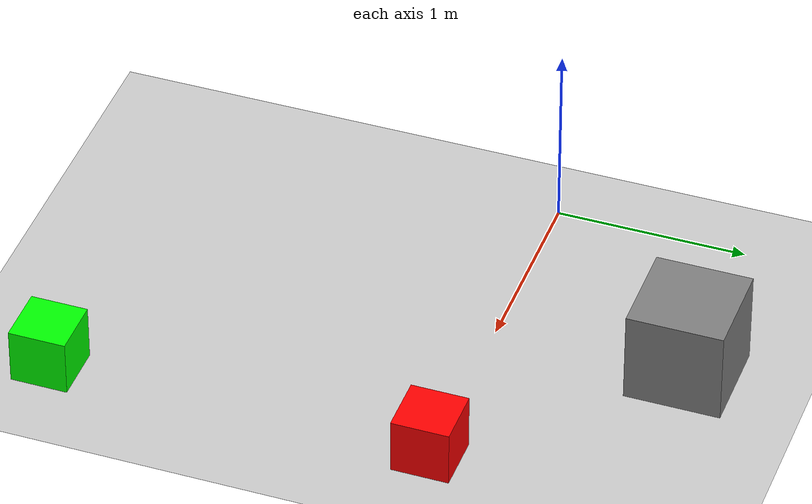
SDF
<?xml version="1.0" ?>
<sdf version="1.9">
  <world name="multi_robot_world">
    <include>
      <uri>https://fuel.ignitionrobotics.org/1.0/OpenRobotics/models/Ground%20Plane</uri>
    </include>

    <!-- Sun as a directional light -->
    <light type="directional" name="sun">
      <cast_shadows>true</cast_shadows>
      <pose>0 0 10 0 0 0</pose>
      <diffuse>0.8 0.8 0.8 1</diffuse>
      <specular>0.2 0.2 0.2 1</specular>
      <direction>-0.5 0.1 -0.9</direction>
    </light>

    <!-- Transport Box (red) -->
    <model name="transport_box">
      <static>false</static>
      <link name="box_link">
        <visual name="box_visual">
          <geometry>
            <box>
              <size>0.3 0.3 0.3</size>
            </box>
          </geometry>
          <material>
            <ambient>1 0 0 1</ambient>
          </material>
        </visual>
        <collision name="box_collision">
          <geometry>
            <box>
              <size>0.3 0.3 0.3</size>
            </box>
          </geometry>
        </collision>
        <inertial>
          <mass>2.0</mass>
          <inertia>
            <ixx>0.02</ixx>
            <ixy>0.0</ixy>
            <ixz>0.0</ixz>
            <iyy>0.02</iyy>
            <iyz>0.0</iyz>
            <izz>0.02</izz>
          </inertia>
        </inertial>
      </link>
      <!-- Placed to be seen by the excavator -->
      <pose>2 0 0.15 0 0 0</pose>
    </model>

    <!-- Additional Transport Box (green) -->
    <model name="transport_box_2">
      <static>false</static>
      <link name="box_link">
        <visual name="box_visual">
          <geometry>
            <box>
              <size>0.3 0.3 0.3</size>
            </box>
          </geometry>
          <material>
            <ambient>0 1 0 1</ambient>
          </material>
        </visual>
        <collision name="box_collision">
          <geometry>
            <box>
              <size>0.3 0.3 0.3</size>
            </box>
          </geometry>
        </collision>
        <inertial>
          <mass>2.0</mass>
          <inertia>
            <ixx>0.02</ixx>
            <ixy>0.0</ixy>
            <ixz>0.0</ixz>
            <iyy>0.02</iyy>
            <iyz>0.0</iyz>
            <izz>0.02</izz>
          </inertia>
        </inertial>
      </link>
      <!-- Positioned a bit lower so both objects are in view -->
      <pose>2 -2 0.15 0 0 0</pose>
    </model>

    <!-- Environment Obstacle -->
    <model name="obstacle_1">
      <static>true</static>
      <link name="link">
        <visual name="obstacle_visual">
          <geometry>
            <box>
              <size>0.5 0.5 0.5</size>
            </box>
          </geometry>
          <material>
            <ambient>0.5 0.5 0.5 1</ambient>
          </material>
        </visual>
        <collision name="obstacle_collision">
          <geometry>
            <box>
              <size>0.5 0.5 0.5</size>
            </box>
          </geometry>
        </collision>
      </link>
      <pose>1 1 0.25 0 0 0</pose>
    </model>

  </world>
</sdf>
